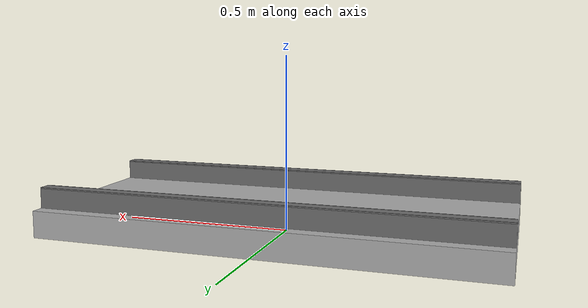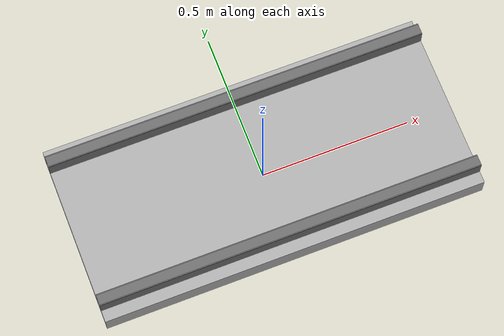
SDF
<?xml version="1.0" ?>
<sdf version="1.5">
  <model name="frc2016_moat">
    <static>true</static>
    <link name="link">
      <inertial>
        <mass>10</mass>
        <pose>0 0 0.06738 0 0 0</pose>
        <inertia>
          <ixx>0.312195</ixx>
          <ixy>0</ixy>
          <ixz>0</ixz>
          <iyy>1.359270833</iyy>
          <iyz>0</iyz>
          <izz>1.641090833</izz>
        </inertia>
      </inertial>

      <visual name="platform">
        <pose>0 0 0.0381 0 0 0</pose>
        <geometry>
          <box>
            <size>1.27 0.5969 0.0762</size>
          </box>
        </geometry>
      </visual>
      <collision name="platform">
        <pose>0 0 0.0381 0 0 0</pose>
        <geometry>
          <box>
            <size>1.27 0.5969  0.0762</size>
          </box>
        </geometry>
      </collision>

      <visual name="tube1_side1">
        <pose>0 -0.25876 0.10301 0 0 0</pose>
        <geometry>
          <box>
            <size>1.27 0.003175 0.0635</size>
          </box>
        </geometry>
        <material>
          <ambient>0.46 0.46 0.46 1.0</ambient>
          <diffuse>0.46 0.46 0.46 1.0</diffuse>
        </material>
      </visual>
      <collision name="tube1_side1">
        <pose>0 -0.25876 0.10301 0 0 0</pose>
        <geometry>
          <box>
            <size>1.27 0.003175 0.0635</size>
          </box>
        </geometry>
      </collision>

      <visual name="tube1_side2">
        <pose>0 -0.22384 0.10301 0 0 0</pose>
        <geometry>
          <box>
            <size>1.27 0.003175 0.0635</size>
          </box>
        </geometry>
        <material>
          <ambient>0.46 0.46 0.46 1.0</ambient>
          <diffuse>0.46 0.46 0.46 1.0</diffuse>
        </material>
      </visual>
      <collision name="tube1_side2">
        <pose>0 -0.22384 0.10301 0 0 0</pose>
        <geometry>
          <box>
            <size>1.27 0.003175 0.0635</size>
          </box>
        </geometry>
      </collision>

      <visual name="tube1_top">
        <pose>0 -0.2413 0.13317 0 0 0</pose>
        <geometry>
          <box>
            <size>1.27 0.0381 0.003175</size>
          </box>
        </geometry>
        <material>
          <ambient>0.46 0.46 0.46 1.0</ambient>
          <diffuse>0.46 0.46 0.46 1.0</diffuse>
        </material>
      </visual>
      <collision name="tube1_top">
        <pose>0 -0.2413 0.13317 0 0 0</pose>
        <geometry>
          <box>
            <size>1.27 0.0381 0.003175</size>
          </box>
        </geometry>
      </collision>

      <visual name="tube2_side1">
        <pose>0 0.22384 0.10301 0 0 0</pose>
        <geometry>
          <box>
            <size>1.27 0.003175 0.0635</size>
          </box>
        </geometry>
        <material>
          <ambient>0.46 0.46 0.46 1.0</ambient>
          <diffuse>0.46 0.46 0.46 1.0</diffuse>
        </material>
      </visual>
      <collision name="tube2_side1">
        <pose>0 0.22384 0.10301 0 0 0</pose>
        <geometry>
          <box>
            <size>1.27 0.003175 0.0635</size>
          </box>
        </geometry>
      </collision>

      <visual name="tube2_side2">
        <pose>0 0.25876 0.10301 0 0 0</pose>
        <geometry>
          <box>
            <size>1.27 0.003175 0.0635</size>
          </box>
        </geometry>
        <material>
          <ambient>0.46 0.46 0.46 1.0</ambient>
          <diffuse>0.46 0.46 0.46 1.0</diffuse>
        </material>
      </visual>
      <collision name="tube2_side2">
        <pose>0 0.25876 0.10301 0 0 0</pose>
        <geometry>
          <box>
            <size>1.27 0.003175 0.0635</size>
          </box>
        </geometry>
      </collision>

      <visual name="tube2_top">
        <pose>0 0.2413 0.13317 0 0 0</pose>
        <geometry>
          <box>
            <size>1.27 0.0381 0.003175</size>
          </box>
        </geometry>
        <material>
          <ambient>0.46 0.46 0.46 1.0</ambient>
          <diffuse>0.46 0.46 0.46 1.0</diffuse>
        </material>
      </visual>
      <collision name="tube2_top">
        <pose>0 0.2413 0.13317 0 0 0</pose>
        <geometry>
          <box>
            <size>1.27 0.0381 0.003175</size>
          </box>
        </geometry>
      </collision>

    </link>
  </model>
</sdf>
